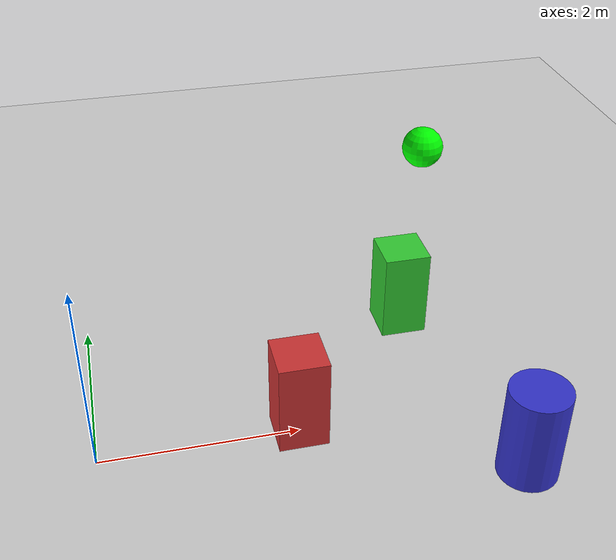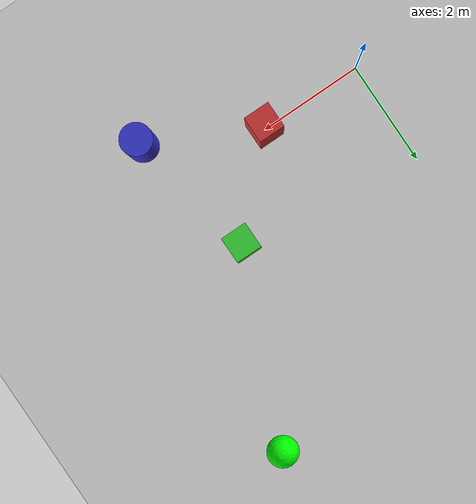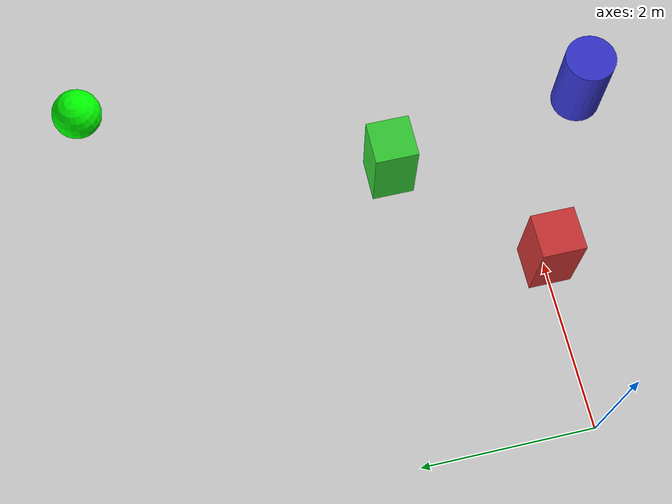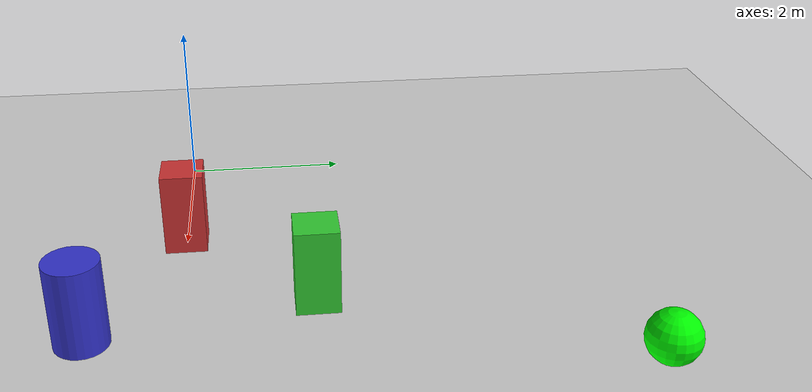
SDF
<?xml version="1.0" ?>
<sdf version="1.6">
  <world name="obstacle_world">

    <!-- Physics -->
    <physics type="ode">
      <real_time_update_rate>1000.0</real_time_update_rate>
      <max_step_size>0.001</max_step_size>
    </physics>

    <!-- Lighting -->
    <include>
      <uri>model://sun</uri>
    </include>

    <!-- Ground plane -->
    <include>
      <uri>model://ground_plane</uri>
    </include>

    <!-- Obstacle 1 - Box in path -->
    <model name="obstacle_1">
      <pose>2.0 0.0 0.5 0 0 0</pose>
      <static>true</static>
      <link name="link">
        <collision name="collision">
          <geometry>
            <box>
              <size>0.5 0.5 1.0</size>
            </box>
          </geometry>
        </collision>
        <visual name="visual">
          <geometry>
            <box>
              <size>0.5 0.5 1.0</size>
            </box>
          </geometry>
          <material>
            <ambient>0.8 0.2 0.2 1</ambient>
            <diffuse>0.8 0.2 0.2 1</diffuse>
          </material>
        </visual>
      </link>
    </model>

    <!-- Obstacle 2 - Box -->
    <model name="obstacle_2">
      <pose>3.5 1.5 0.5 0 0 0</pose>
      <static>true</static>
      <link name="link">
        <collision name="collision">
          <geometry>
            <box>
              <size>0.5 0.5 1.0</size>
            </box>
          </geometry>
        </collision>
        <visual name="visual">
          <geometry>
            <box>
              <size>0.5 0.5 1.0</size>
            </box>
          </geometry>
          <material>
            <ambient>0.2 0.8 0.2 1</ambient>
            <diffuse>0.2 0.8 0.2 1</diffuse>
          </material>
        </visual>
      </link>
    </model>

    <!-- Obstacle 3 - Cylinder -->
    <model name="obstacle_3">
      <pose>4.0 -1.0 0.5 0 0 0</pose>
      <static>true</static>
      <link name="link">
        <collision name="collision">
          <geometry>
            <cylinder>
              <radius>0.3</radius>
              <length>1.0</length>
            </cylinder>
          </geometry>
        </collision>
        <visual name="visual">
          <geometry>
            <cylinder>
              <radius>0.3</radius>
              <length>1.0</length>
            </cylinder>
          </geometry>
          <material>
            <ambient>0.2 0.2 0.8 1</ambient>
            <diffuse>0.2 0.2 0.8 1</diffuse>
          </material>
        </visual>
      </link>
    </model>

    <!-- Goal marker (green sphere) -->
    <model name="goal_marker">
      <pose>5.0 5.0 0.3 0 0 0</pose>
      <static>true</static>
      <link name="link">
        <visual name="visual">
          <geometry>
            <sphere>
              <radius>0.3</radius>
            </sphere>
          </geometry>
          <material>
            <ambient>0 1 0 1</ambient>
            <diffuse>0 1 0 1</diffuse>
          </material>
        </visual>
      </link>
    </model>

  </world>
</sdf>
